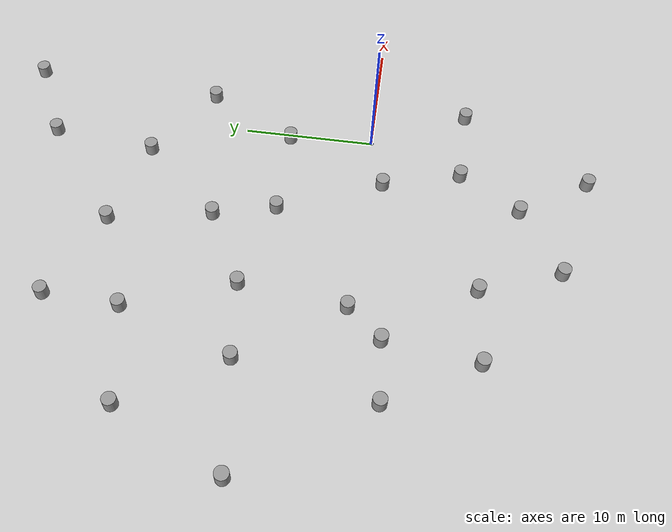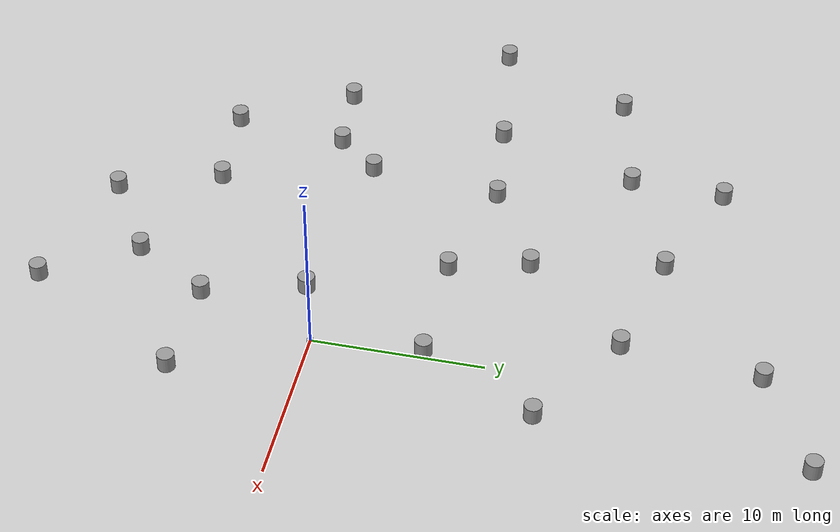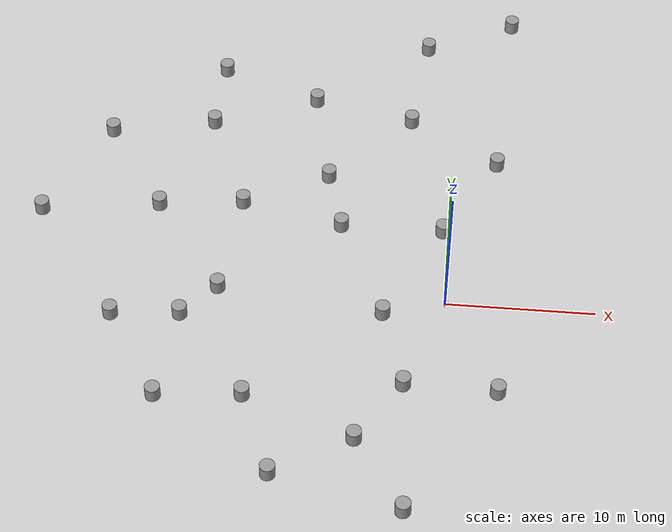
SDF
<sdf version="1.7">
 <world name="default">
  <model name="ground_plane">
   <static>1</static>
   <link name="link">
    <collision name="collision">
     <geometry><plane><normal>0 0 1</normal><size>100 100</size></plane></geometry>
     <surface>
      <contact><collide_bitmask>65535</collide_bitmask></contact>
      <friction><ode><mu>100</mu><mu2>50</mu2></ode></friction>
     </surface>
    </collision>
    <visual name="visual">
     <cast_shadows>0</cast_shadows>
     <geometry><plane><normal>0 0 1</normal><size>100 100</size></plane></geometry>
     <material>
      <script><uri>file://media/materials/scripts/gazebo.material</uri><name>Gazebo/Grey</name></script>
     </material>
    </visual>
   </link>
  </model>
  <model name="my_bot">
   <link name="base_link">
    <inertial>
     <pose>0.055714 0 0.078571 0 -0 0</pose>
     <mass>0.7</mass>
     <inertia>
      <ixx>0.0064169</ixx>
      <ixy>0</ixy>
      <ixz>0.00118929</ixz>
      <iyy>0.00745405</iyy>
      <iyz>0</iyz>
      <izz>0.00876214</izz>
     </inertia>
    </inertial>
    <collision name="base_link_fixed_joint_lump__chassis_collision">
     <pose>0.05 0 0.075 0 -0 0</pose>
     <geometry><box><size>0.3 0.3 0.15</size></box></geometry>
    </collision>
    <collision name="base_link_fixed_joint_lump__caster_wheel_collision_1">
     <pose>0.14 0 0 0 -0 0</pose>
     <geometry><sphere><radius>0.05</radius></sphere></geometry>
     <surface><friction><ode><mu>0.001</mu><mu2>0.001</mu2></ode></friction></surface>
    </collision>
    <collision name="base_link_fixed_joint_lump__laser_frame_collision_2">
     <pose>0 0 0.175 0 -0 0</pose>
     <geometry><cylinder><length>0.04</length><radius>0.05</radius></cylinder></geometry>
    </collision>
    <visual name="base_link_fixed_joint_lump__chassis_visual">
     <pose>0.05 0 0.075 0 -0 0</pose>
     <geometry><box><size>0.3 0.3 0.15</size></box></geometry>
     <material>
      <script><name>Gazebo/White</name><uri>file://media/materials/scripts/gazebo.material</uri></script>
     </material>
    </visual>
    <visual name="base_link_fixed_joint_lump__caster_wheel_visual_1">
     <pose>0.14 0 0 0 -0 0</pose>
     <geometry><sphere><radius>0.05</radius></sphere></geometry>
     <material>
      <script><name>Gazebo/Black</name><uri>file://media/materials/scripts/gazebo.material</uri></script>
     </material>
    </visual>
    <visual name="base_link_fixed_joint_lump__laser_frame_visual_2">
     <pose>0 0 0.175 0 -0 0</pose>
     <geometry><cylinder><length>0.04</length><radius>0.05</radius></cylinder></geometry>
     <material>
      <script><name>Gazebo/Red</name><uri>file://media/materials/scripts/gazebo.material</uri></script>
     </material>
    </visual>
    <sensor name="laser" type="ray">
     <visualize>1</visualize>
     <update_rate>10</update_rate>
     <ray>
      <scan>
       <horizontal>
        <samples>360</samples>
        <resolution>1</resolution>
        <min_angle>-3.14</min_angle>
        <max_angle>3.14</max_angle>
       </horizontal>
       <vertical><samples>1</samples><min_angle>0</min_angle><max_angle>0</max_angle></vertical>
      </scan>
      <range><min>0.3</min><max>12</max><resolution>0.01</resolution></range>
     </ray>
     <plugin name="laser_controller" filename="libgazebo_ros_ray_sensor.so">
      <ros><argument>~/out:=scan</argument></ros>
      <output_type>sensor_msgs/LaserScan</output_type>
      <frame_name>laser_frame</frame_name>
     </plugin>
     <pose>0 0 0.175 0 -0 0</pose>
    </sensor>
   </link>
   <joint name="left_wheel_joint" type="revolute">
    <pose relative_to="base_link">0 0.175 0 -1.5708 0 0</pose>
    <parent>base_link</parent>
    <child>left_wheel</child>
    <axis>
     <xyz>0 0 1</xyz>
     <limit><lower>-1e+16</lower><upper>1e+16</upper></limit>
     <dynamics><spring_reference>0</spring_reference><spring_stiffness>0</spring_stiffness></dynamics>
    </axis>
   </joint>
   <link name="left_wheel">
    <pose relative_to="left_wheel_joint">0 0 0 0 -0 0</pose>
    <inertial>
     <mass>0.1</mass>
     <inertia>
      <ixx>7.58333e-05</ixx>
      <ixy>0</ixy>
      <ixz>0</ixz>
      <iyy>7.58333e-05</iyy>
      <iyz>0</iyz>
      <izz>0.000125</izz>
     </inertia>
    </inertial>
    <collision name="left_wheel_collision">
     <geometry><cylinder><length>0.04</length><radius>0.05</radius></cylinder></geometry>
    </collision>
    <visual name="left_wheel_visual">
     <geometry><cylinder><length>0.04</length><radius>0.05</radius></cylinder></geometry>
     <material>
      <script><name>Gazebo/Blue</name><uri>file://media/materials/scripts/gazebo.material</uri></script>
     </material>
    </visual>
   </link>
   <joint name="right_wheel_joint" type="revolute">
    <pose relative_to="base_link">0 -0.175 0 1.5708 -0 0</pose>
    <parent>base_link</parent>
    <child>right_wheel</child>
    <axis>
     <xyz>0 0 -1</xyz>
     <limit><lower>-1e+16</lower><upper>1e+16</upper></limit>
     <dynamics><spring_reference>0</spring_reference><spring_stiffness>0</spring_stiffness></dynamics>
    </axis>
   </joint>
   <link name="right_wheel">
    <pose relative_to="right_wheel_joint">0 0 0 0 -0 0</pose>
    <inertial>
     <mass>0.1</mass>
     <inertia>
      <ixx>7.58333e-05</ixx>
      <ixy>0</ixy>
      <ixz>0</ixz>
      <iyy>7.58333e-05</iyy>
      <iyz>0</iyz>
      <izz>0.000125</izz>
     </inertia>
    </inertial>
    <collision name="right_wheel_collision">
     <geometry><cylinder><length>0.04</length><radius>0.05</radius></cylinder></geometry>
    </collision>
    <visual name="right_wheel_visual">
     <geometry><cylinder><length>0.04</length><radius>0.05</radius></cylinder></geometry>
     <material>
      <script><name>Gazebo/Blue</name><uri>file://media/materials/scripts/gazebo.material</uri></script>
     </material>
    </visual>
   </link>
   <static>0</static>
   <plugin name="diff_drive" filename="libgazebo_ros_diff_drive.so">
    <left_joint>left_wheel_joint</left_joint>
    <right_joint>right_wheel_joint</right_joint>
    <wheel_separation>0.35</wheel_separation>
    <wheel_diameter>0.1</wheel_diameter>
    <max_wheel_torque>200</max_wheel_torque>
    <max_wheel_acceleration>10.0</max_wheel_acceleration>
    <odometry_frame>odom</odometry_frame>
    <robot_base_frame>base_link</robot_base_frame>
    <publish_odom>1</publish_odom>
    <publish_odom_tf>1</publish_odom_tf>
    <publish_wheel_tf>1</publish_wheel_tf>
   </plugin>
   <pose>0.000516 7e-06 0.05 0 1e-06 0.000107</pose>
  </model>
  <model name="unit_cylinder_0">
   <pose>3.65997 -7.28203 0.499997 3e-06 4e-06 -0</pose>
   <link name="link">
    <inertial>
     <mass>1</mass>
     <inertia><ixx>0.145833</ixx><ixy>0</ixy><ixz>0</ixz><iyy>0.145833</iyy><iyz>0</iyz><izz>0.125</izz></inertia>
    </inertial>
    <collision name="collision">
     <geometry><cylinder><radius>0.5</radius><length>1</length></cylinder></geometry>
    </collision>
    <visual name="visual">
     <geometry><cylinder><radius>0.5</radius><length>1</length></cylinder></geometry>
     <material>
      <script><name>Gazebo/Grey</name><uri>file://media/materials/scripts/gazebo.material</uri></script>
     </material>
    </visual>
   </link>
  </model>
  <model name="unit_cylinder_2">
   <pose>-4.1214 -1.2724 0.499997 3e-06 4e-06 -0</pose>
   <link name="link">
    <inertial>
     <mass>1</mass>
     <inertia><ixx>0.145833</ixx><ixy>0</ixy><ixz>0</ixz><iyy>0.145833</iyy><iyz>0</iyz><izz>0.125</izz></inertia>
    </inertial>
    <collision name="collision">
     <geometry><cylinder><radius>0.5</radius><length>1</length></cylinder></geometry>
    </collision>
    <visual name="visual">
     <geometry><cylinder><radius>0.5</radius><length>1</length></cylinder></geometry>
     <material>
      <script><name>Gazebo/Grey</name><uri>file://media/materials/scripts/gazebo.material</uri></script>
     </material>
    </visual>
   </link>
  </model>
  <model name="unit_cylinder_3">
   <pose>-8.6978 11.0505 0.499997 3e-06 4e-06 -0</pose>
   <link name="link">
    <inertial>
     <mass>1</mass>
     <inertia><ixx>0.145833</ixx><ixy>0</ixy><ixz>0</ixz><iyy>0.145833</iyy><iyz>0</iyz><izz>0.125</izz></inertia>
    </inertial>
    <collision name="collision">
     <geometry><cylinder><radius>0.5</radius><length>1</length></cylinder></geometry>
    </collision>
    <visual name="visual">
     <geometry><cylinder><radius>0.5</radius><length>1</length></cylinder></geometry>
     <material>
      <script><name>Gazebo/Grey</name><uri>file://media/materials/scripts/gazebo.material</uri></script>
     </material>
    </visual>
   </link>
  </model>
  <model name="unit_cylinder_5">
   <pose>-15.3126 0.131052 0.499997 3e-06 4e-06 -0</pose>
   <link name="link">
    <inertial>
     <mass>1</mass>
     <inertia><ixx>0.145833</ixx><ixy>0</ixy><ixz>0</ixz><iyy>0.145833</iyy><iyz>0</iyz><izz>0.125</izz></inertia>
    </inertial>
    <collision name="collision">
     <geometry><cylinder><radius>0.5</radius><length>1</length></cylinder></geometry>
    </collision>
    <visual name="visual">
     <geometry><cylinder><radius>0.5</radius><length>1</length></cylinder></geometry>
     <material>
      <script><name>Gazebo/Grey</name><uri>file://media/materials/scripts/gazebo.material</uri></script>
     </material>
    </visual>
   </link>
  </model>
  <model name="unit_cylinder_7">
   <pose>-3.13827 17.0948 0.499997 3e-06 4e-06 -0</pose>
   <link name="link">
    <inertial>
     <mass>1</mass>
     <inertia><ixx>0.145833</ixx><ixy>0</ixy><ixz>0</ixz><iyy>0.145833</iyy><iyz>0</iyz><izz>0.125</izz></inertia>
    </inertial>
    <collision name="collision">
     <geometry><cylinder><radius>0.5</radius><length>1</length></cylinder></geometry>
    </collision>
    <visual name="visual">
     <geometry><cylinder><radius>0.5</radius><length>1</length></cylinder></geometry>
     <material>
      <script><name>Gazebo/Grey</name><uri>file://media/materials/scripts/gazebo.material</uri></script>
     </material>
    </visual>
   </link>
  </model>
  <model name="unit_cylinder_9">
   <pose>-5.2637 -11.6542 0.499997 3e-06 4e-06 -0</pose>
   <link name="link">
    <inertial>
     <mass>1</mass>
     <inertia><ixx>0.145833</ixx><ixy>0</ixy><ixz>0</ixz><iyy>0.145833</iyy><iyz>0</iyz><izz>0.125</izz></inertia>
    </inertial>
    <collision name="collision">
     <geometry><cylinder><radius>0.5</radius><length>1</length></cylinder></geometry>
    </collision>
    <visual name="visual">
     <geometry><cylinder><radius>0.5</radius><length>1</length></cylinder></geometry>
     <material>
      <script><name>Gazebo/Grey</name><uri>file://media/materials/scripts/gazebo.material</uri></script>
     </material>
    </visual>
   </link>
  </model>
  <model name="unit_cylinder_10">
   <pose>-2.43072 -7.11565 0.499997 3e-06 4e-06 -0</pose>
   <link name="link">
    <inertial>
     <mass>1</mass>
     <inertia><ixx>0.145833</ixx><ixy>0</ixy><ixz>0</ixz><iyy>0.145833</iyy><iyz>0</iyz><izz>0.125</izz></inertia>
    </inertial>
    <collision name="collision">
     <geometry><cylinder><radius>0.5</radius><length>1</length></cylinder></geometry>
    </collision>
    <visual name="visual">
     <geometry><cylinder><radius>0.5</radius><length>1</length></cylinder></geometry>
     <material>
      <script><name>Gazebo/Grey</name><uri>file://media/materials/scripts/gazebo.material</uri></script>
     </material>
    </visual>
   </link>
  </model>
  <model name="unit_cylinder_13">
   <pose>-10.2033 18.7423 0.499997 3e-06 4e-06 -0</pose>
   <link name="link">
    <inertial>
     <mass>1</mass>
     <inertia><ixx>0.145833</ixx><ixy>0</ixy><ixz>0</ixz><iyy>0.145833</iyy><iyz>0</iyz><izz>0.125</izz></inertia>
    </inertial>
    <collision name="collision">
     <geometry><cylinder><radius>0.5</radius><length>1</length></cylinder></geometry>
    </collision>
    <visual name="visual">
     <geometry><cylinder><radius>0.5</radius><length>1</length></cylinder></geometry>
     <material>
      <script><name>Gazebo/Grey</name><uri>file://media/materials/scripts/gazebo.material</uri></script>
     </material>
    </visual>
   </link>
  </model>
  <model name="unit_cylinder_14">
   <pose>-14.4782 8.03515 0.499997 3e-06 4e-06 -0</pose>
   <link name="link">
    <inertial>
     <mass>1</mass>
     <inertia><ixx>0.145833</ixx><ixy>0</ixy><ixz>0</ixz><iyy>0.145833</iyy><iyz>0</iyz><izz>0.125</izz></inertia>
    </inertial>
    <collision name="collision">
     <geometry><cylinder><radius>0.5</radius><length>1</length></cylinder></geometry>
    </collision>
    <visual name="visual">
     <geometry><cylinder><radius>0.5</radius><length>1</length></cylinder></geometry>
     <material>
      <script><name>Gazebo/Grey</name><uri>file://media/materials/scripts/gazebo.material</uri></script>
     </material>
    </visual>
   </link>
  </model>
  <model name="unit_cylinder_17">
   <pose>-0.431503 6.40348 0.499997 3e-06 4e-06 -0</pose>
   <link name="link">
    <inertial>
     <mass>1</mass>
     <inertia><ixx>0.145833</ixx><ixy>0</ixy><ixz>0</ixz><iyy>0.145833</iyy><iyz>0</iyz><izz>0.125</izz></inertia>
    </inertial>
    <collision name="collision">
     <geometry><cylinder><radius>0.5</radius><length>1</length></cylinder></geometry>
    </collision>
    <visual name="visual">
     <geometry><cylinder><radius>0.5</radius><length>1</length></cylinder></geometry>
     <material>
      <script><name>Gazebo/Grey</name><uri>file://media/materials/scripts/gazebo.material</uri></script>
     </material>
    </visual>
   </link>
  </model>
  <model name="unit_cylinder_18">
   <pose>-7.46248 6.40465 0.499997 3e-06 4e-06 -0</pose>
   <link name="link">
    <inertial>
     <mass>1</mass>
     <inertia><ixx>0.145833</ixx><ixy>0</ixy><ixz>0</ixz><iyy>0.145833</iyy><iyz>0</iyz><izz>0.125</izz></inertia>
    </inertial>
    <collision name="collision">
     <geometry><cylinder><radius>0.5</radius><length>1</length></cylinder></geometry>
    </collision>
    <visual name="visual">
     <geometry><cylinder><radius>0.5</radius><length>1</length></cylinder></geometry>
     <material>
      <script><name>Gazebo/Grey</name><uri>file://media/materials/scripts/gazebo.material</uri></script>
     </material>
    </visual>
   </link>
  </model>
  <model name="unit_cylinder_23">
   <pose>-2.2704 25.0895 0.499997 3e-06 4e-06 -0</pose>
   <link name="link">
    <inertial>
     <mass>1</mass>
     <inertia><ixx>0.145833</ixx><ixy>0</ixy><ixz>0</ixz><iyy>0.145833</iyy><iyz>0</iyz><izz>0.125</izz></inertia>
    </inertial>
    <collision name="collision">
     <geometry><cylinder><radius>0.5</radius><length>1</length></cylinder></geometry>
    </collision>
    <visual name="visual">
     <geometry><cylinder><radius>0.5</radius><length>1</length></cylinder></geometry>
     <material>
      <script><name>Gazebo/Grey</name><uri>file://media/materials/scripts/gazebo.material</uri></script>
     </material>
    </visual>
   </link>
  </model>
  <model name="unit_cylinder_24">
   <pose>-12.6579 -8.80439 0.499997 3e-06 4e-06 -0</pose>
   <link name="link">
    <inertial>
     <mass>1</mass>
     <inertia><ixx>0.145833</ixx><ixy>0</ixy><ixz>0</ixz><iyy>0.145833</iyy><iyz>0</iyz><izz>0.125</izz></inertia>
    </inertial>
    <collision name="collision">
     <geometry><cylinder><radius>0.5</radius><length>1</length></cylinder></geometry>
    </collision>
    <visual name="visual">
     <geometry><cylinder><radius>0.5</radius><length>1</length></cylinder></geometry>
     <material>
      <script><name>Gazebo/Grey</name><uri>file://media/materials/scripts/gazebo.material</uri></script>
     </material>
    </visual>
   </link>
  </model>
  <model name="unit_cylinder_25">
   <pose>-17.5484 -2.4077 0.499997 3e-06 4e-06 -0</pose>
   <link name="link">
    <inertial>
     <mass>1</mass>
     <inertia><ixx>0.145833</ixx><ixy>0</ixy><ixz>0</ixz><iyy>0.145833</iyy><iyz>0</iyz><izz>0.125</izz></inertia>
    </inertial>
    <collision name="collision">
     <geometry><cylinder><radius>0.5</radius><length>1</length></cylinder></geometry>
    </collision>
    <visual name="visual">
     <geometry><cylinder><radius>0.5</radius><length>1</length></cylinder></geometry>
     <material>
      <script><name>Gazebo/Grey</name><uri>file://media/materials/scripts/gazebo.material</uri></script>
     </material>
    </visual>
   </link>
  </model>
  <model name="unit_cylinder_26">
   <pose>-20.2895 7.38213 0.499997 3e-06 4e-06 -0</pose>
   <link name="link">
    <inertial>
     <mass>1</mass>
     <inertia><ixx>0.145833</ixx><ixy>0</ixy><ixz>0</ixz><iyy>0.145833</iyy><iyz>0</iyz><izz>0.125</izz></inertia>
    </inertial>
    <collision name="collision">
     <geometry><cylinder><radius>0.5</radius><length>1</length></cylinder></geometry>
    </collision>
    <visual name="visual">
     <geometry><cylinder><radius>0.5</radius><length>1</length></cylinder></geometry>
     <material>
      <script><name>Gazebo/Grey</name><uri>file://media/materials/scripts/gazebo.material</uri></script>
     </material>
    </visual>
   </link>
  </model>
  <model name="unit_cylinder_27">
   <pose>-17.4454 15.8513 0.499997 3e-06 4e-06 -0</pose>
   <link name="link">
    <inertial>
     <mass>1</mass>
     <inertia><ixx>0.145833</ixx><ixy>0</ixy><ixz>0</ixz><iyy>0.145833</iyy><iyz>0</iyz><izz>0.125</izz></inertia>
    </inertial>
    <collision name="collision">
     <geometry><cylinder><radius>0.5</radius><length>1</length></cylinder></geometry>
    </collision>
    <visual name="visual">
     <geometry><cylinder><radius>0.5</radius><length>1</length></cylinder></geometry>
     <material>
      <script><name>Gazebo/Grey</name><uri>file://media/materials/scripts/gazebo.material</uri></script>
     </material>
    </visual>
   </link>
  </model>
  <model name="unit_cylinder_28">
   <pose>-17.2117 21.4878 0.499997 3e-06 4e-06 -0</pose>
   <link name="link">
    <inertial>
     <mass>1</mass>
     <inertia><ixx>0.145833</ixx><ixy>0</ixy><ixz>0</ixz><iyy>0.145833</iyy><iyz>0</iyz><izz>0.125</izz></inertia>
    </inertial>
    <collision name="collision">
     <geometry><cylinder><radius>0.5</radius><length>1</length></cylinder></geometry>
    </collision>
    <visual name="visual">
     <geometry><cylinder><radius>0.5</radius><length>1</length></cylinder></geometry>
     <material>
      <script><name>Gazebo/Grey</name><uri>file://media/materials/scripts/gazebo.material</uri></script>
     </material>
    </visual>
   </link>
  </model>
  <model name="unit_cylinder_29">
   <pose>-1.89721 -16.7795 0.499997 3e-06 4e-06 -0</pose>
   <link name="link">
    <inertial>
     <mass>1</mass>
     <inertia><ixx>0.145833</ixx><ixy>0</ixy><ixz>0</ixz><iyy>0.145833</iyy><iyz>0</iyz><izz>0.125</izz></inertia>
    </inertial>
    <collision name="collision">
     <geometry><cylinder><radius>0.5</radius><length>1</length></cylinder></geometry>
    </collision>
    <visual name="visual">
     <geometry><cylinder><radius>0.5</radius><length>1</length></cylinder></geometry>
     <material>
      <script><name>Gazebo/Grey</name><uri>file://media/materials/scripts/gazebo.material</uri></script>
     </material>
    </visual>
   </link>
  </model>
  <model name="unit_cylinder_31">
   <pose>-10.3823 -14.7196 0.499997 3e-06 4e-06 -0</pose>
   <link name="link">
    <inertial>
     <mass>1</mass>
     <inertia><ixx>0.145833</ixx><ixy>0</ixy><ixz>0</ixz><iyy>0.145833</iyy><iyz>0</iyz><izz>0.125</izz></inertia>
    </inertial>
    <collision name="collision">
     <geometry><cylinder><radius>0.5</radius><length>1</length></cylinder></geometry>
    </collision>
    <visual name="visual">
     <geometry><cylinder><radius>0.5</radius><length>1</length></cylinder></geometry>
     <material>
      <script><name>Gazebo/Grey</name><uri>file://media/materials/scripts/gazebo.material</uri></script>
     </material>
    </visual>
   </link>
  </model>
  <model name="unit_cylinder_32">
   <pose>-18.3376 -9.25995 0.499997 3e-06 4e-06 -0</pose>
   <link name="link">
    <inertial>
     <mass>1</mass>
     <inertia><ixx>0.145833</ixx><ixy>0</ixy><ixz>0</ixz><iyy>0.145833</iyy><iyz>0</iyz><izz>0.125</izz></inertia>
    </inertial>
    <collision name="collision">
     <geometry><cylinder><radius>0.5</radius><length>1</length></cylinder></geometry>
    </collision>
    <visual name="visual">
     <geometry><cylinder><radius>0.5</radius><length>1</length></cylinder></geometry>
     <material>
      <script><name>Gazebo/Grey</name><uri>file://media/materials/scripts/gazebo.material</uri></script>
     </material>
    </visual>
   </link>
  </model>
  <model name="unit_cylinder_33">
   <pose>-22.1476 -2.75998 0.499997 3e-06 4e-06 -0</pose>
   <link name="link">
    <inertial>
     <mass>1</mass>
     <inertia><ixx>0.145833</ixx><ixy>0</ixy><ixz>0</ixz><iyy>0.145833</iyy><iyz>0</iyz><izz>0.125</izz></inertia>
    </inertial>
    <collision name="collision">
     <geometry><cylinder><radius>0.5</radius><length>1</length></cylinder></geometry>
    </collision>
    <visual name="visual">
     <geometry><cylinder><radius>0.5</radius><length>1</length></cylinder></geometry>
     <material>
      <script><name>Gazebo/Grey</name><uri>file://media/materials/scripts/gazebo.material</uri></script>
     </material>
    </visual>
   </link>
  </model>
  <model name="unit_cylinder_34">
   <pose>-28.399 6.30562 0.499997 3e-06 4e-06 -0</pose>
   <link name="link">
    <inertial>
     <mass>1</mass>
     <inertia><ixx>0.145833</ixx><ixy>0</ixy><ixz>0</ixz><iyy>0.145833</iyy><iyz>0</iyz><izz>0.125</izz></inertia>
    </inertial>
    <collision name="collision">
     <geometry><cylinder><radius>0.5</radius><length>1</length></cylinder></geometry>
    </collision>
    <visual name="visual">
     <geometry><cylinder><radius>0.5</radius><length>1</length></cylinder></geometry>
     <material>
      <script><name>Gazebo/Grey</name><uri>file://media/materials/scripts/gazebo.material</uri></script>
     </material>
    </visual>
   </link>
  </model>
  <model name="unit_cylinder_35">
   <pose>-24.6713 14.4125 0.499997 3e-06 4e-06 -0</pose>
   <link name="link">
    <inertial>
     <mass>1</mass>
     <inertia><ixx>0.145833</ixx><ixy>0</ixy><ixz>0</ixz><iyy>0.145833</iyy><iyz>0</iyz><izz>0.125</izz></inertia>
    </inertial>
    <collision name="collision">
     <geometry><cylinder><radius>0.5</radius><length>1</length></cylinder></geometry>
    </collision>
    <visual name="visual">
     <geometry><cylinder><radius>0.5</radius><length>1</length></cylinder></geometry>
     <material>
      <script><name>Gazebo/Grey</name><uri>file://media/materials/scripts/gazebo.material</uri></script>
     </material>
    </visual>
   </link>
  </model>
  <model name="unit_cylinder_39">
   <pose>3.94413 28.1845 0.499997 3e-06 4e-06 -0</pose>
   <link name="link">
    <inertial>
     <mass>1</mass>
     <inertia><ixx>0.145833</ixx><ixy>0</ixy><ixz>0</ixz><iyy>0.145833</iyy><iyz>0</iyz><izz>0.125</izz></inertia>
    </inertial>
    <collision name="collision">
     <geometry><cylinder><radius>0.5</radius><length>1</length></cylinder></geometry>
    </collision>
    <visual name="visual">
     <geometry><cylinder><radius>0.5</radius><length>1</length></cylinder></geometry>
     <material>
      <script><name>Gazebo/Grey</name><uri>file://media/materials/scripts/gazebo.material</uri></script>
     </material>
    </visual>
   </link>
  </model>
  <model name="unit_cylinder_54">
   <pose>3.14362 13.1812 0.499997 3e-06 4e-06 -0</pose>
   <link name="link">
    <inertial>
     <mass>1</mass>
     <inertia><ixx>0.145833</ixx><ixy>0</ixy><ixz>0</ixz><iyy>0.145833</iyy><iyz>0</iyz><izz>0.125</izz></inertia>
    </inertial>
    <collision name="collision">
     <geometry><cylinder><radius>0.5</radius><length>1</length></cylinder></geometry>
    </collision>
    <visual name="visual">
     <geometry><cylinder><radius>0.5</radius><length>1</length></cylinder></geometry>
     <material>
      <script><name>Gazebo/Grey</name><uri>file://media/materials/scripts/gazebo.material</uri></script>
     </material>
    </visual>
   </link>
  </model>
 </world>
</sdf>
